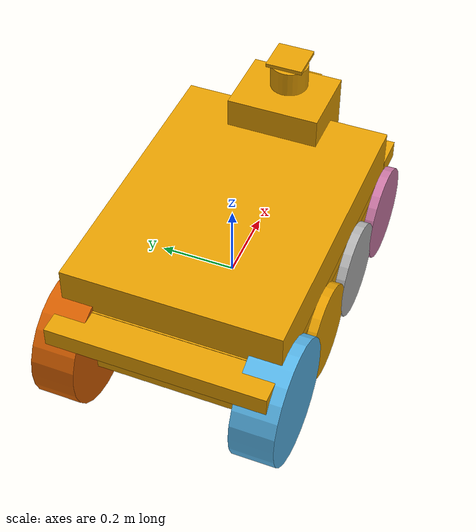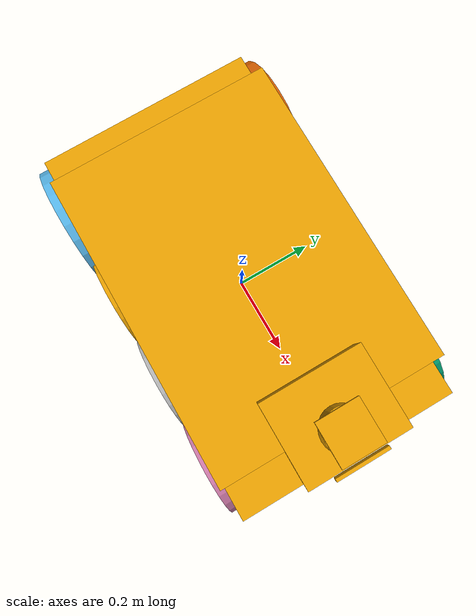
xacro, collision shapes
<?xml version='1.0' encoding='utf-8'?>
<robot name='marble_hd2_sensor_config_3' xmlns:xacro='http://ros.org/wiki/xacro'>
  <xacro:arg name="name" default="marble_hd2_sensor_config_3"/>
  <xacro:property name="robot_namespace" value="$(arg name)"/>
  <link name='${robot_namespace}/base_link'>
    <inertial>
      <origin xyz='-0.000649 -0.084945 0.062329' rpy='0 -0 0'/>
      <mass value='21.8194'/>
      <inertia ixx='0.615397' ixy='-0.0240585' ixz='-0.120749' iyy='1.75388' iyz='-0.0028322' izz='2.03641'/>
    </inertial>
    <collision name='base_link_collision'>
      <origin xyz='0 0 0.12' rpy='0 -0 0'/>
      <geometry>
        <box size='0.9874 0.5709 0.05'/>
      </geometry>
    </collision>
    <collision name='base_link_collision_bottom'>
      <origin xyz='0 0 0.046' rpy='0 -0 0'/>
      <geometry>
        <box size='0.8 0.5709 0.2'/>
      </geometry>
    </collision>
    <collision name='base_link_collision_1'>
      <origin xyz='0 0 0.185625' rpy='0 -0 0'/>
      <geometry>
        <box size='0.78992 0.5709 0.12375'/>
      </geometry>
    </collision>
    <collision name='base_link_fixed_joint_lump__camera/camera_link_collision_1'>
      <origin xyz='0 0 0.05' rpy='0 -0 0'/>
      <geometry>
        <box size='0.0078 0.13 0.0192'/>
      </geometry>
    </collision>
    <collision name='base_link_fixed_joint_lump__camera/camera_link_collision_2'>
      <origin xyz='0.485 0 0.31' rpy='0 -0 0'/>
      <geometry>
        <box size='0.0078 0.13 0.0192'/>
      </geometry>
    </collision>
    <collision name='base_link_fixed_joint_lump__camera/camera_link_collision_3'>
      <origin xyz='0.473 0 0.26' rpy='0 0.5236 0'/>
      <geometry>
        <box size='0.0078 0.13 0.0192'/>
      </geometry>
    </collision>
    <collision name='base_link_fixed_joint_lump__velodyne_base_link_collision_6'>
      <origin xyz='0.403 0 0.36' rpy='0 -0 0'/>
      <geometry>
        <cylinder radius='0.0516' length='0.0717'/>
      </geometry>
    </collision>
    <collision name='base_link_fixed_joint_lump__velodyne_gimbal_plate_base_link_collision_7'>
      <origin xyz='0.403 0 0.41' rpy='0 -0 0'/>
      <geometry>
        <box size='0.1 0.1 0.01'/>
      </geometry>
    </collision>
    <collision name='base_link_fixed_joint_lump__sensor_tower_8'>
      <origin xyz='0.374 0 0.215' rpy='0 -0 0'/>
      <geometry>
        <box size='0.2 0.25 0.225'/>
      </geometry>
    </collision>
    <collision name='base_link_fixed_joint_lump__computer_block_9'>
      <origin xyz='0.05 0 0.155' rpy='0 -0 0'/>
      <geometry>
        <box size='0.3 0.355 0.16'/>
      </geometry>
    </collision>
    <visual name='Body_visual'>
      <origin xyz='0 0 -0.135' rpy='0 -0 1.57'/>
      <geometry>
        <mesh filename='package://marble_hd2_sensor_config_3/meshes/hd2.dae' scale='1 1 1'/>
      </geometry>
    </visual>
  </link>
  <sensor name='camera_down' update_rate='30'>
    <parent link='${robot_namespace}/base_link'/>
    <origin xyz='0.473 0 0.26' rpy='0 0.5236 0'/>
    <camera>
      <image width='320' height='240' format='R8G8B8' hfov='1.5184' near='0.01' far='300' />
    </camera>
  </sensor>
  <sensor name='planar_laser' update_rate='10'>
    <parent link='${robot_namespace}/base_link'/>
    <origin xyz='0.403 0 0.127' rpy='0 -0 0'/>
  </sensor>
  <sensor name='imu_sensor' update_rate='50'>
    <parent link='${robot_namespace}/base_link'/>
    <origin xyz='0 0 0' rpy='0 -0 0'/>
  </sensor>
  <link name='${robot_namespace}/sensor_head_link'>
    <inertial>
      <origin xyz='0 0 0' rpy='0 -0 0'/>
      <mass value='0.1'/>
      <inertia ixx='0.01' ixy='0' ixz='0' iyy='0.01' iyz='0' izz='0.01'/>
    </inertial>
    <visual name='sensor_head_visual'>
      <origin xyz='0 0 0' rpy='0 -0 0'/>
      <geometry>
        <box size='0.1 0.1 0.1'/>
      </geometry>
    </visual>
    <visual name='base_link_fixed_joint_lump__velodyne_base_link_visual_10'>
      <origin xyz='0 0 0.086' rpy='0 -0 0'/>
      <geometry>
        <mesh filename='package://marble_hd2_sensor_config_3/meshes/VLP16_base_1.dae' scale='1 1 1'/>
      </geometry>
    </visual>
    <visual name='base_link_fixed_joint_lump__velodyne_base_link_visual_11'>
      <origin xyz='0 0 0.086' rpy='0 -0 0'/>
      <geometry>
        <mesh filename='package://marble_hd2_sensor_config_3/meshes/VLP16_base_2.dae' scale='1 1 1'/>
      </geometry>
    </visual>
    <visual name='base_link_fixed_joint_lump__velodyne_visual_12'>
      <origin xyz='0 0 0.086' rpy='0 -0 0'/>
      <geometry>
        <mesh filename='package://marble_hd2_sensor_config_3/meshes/VLP16_scan.dae' scale='1 1 1'/>
      </geometry>
    </visual>
    <visual name='base_link_fixed_joint_lump__velodyne_base_link_visual_13'>
      <origin xyz='-0.158 0 -0.086' rpy='3.14159 1.57079 3.14159'/>
      <geometry>
        <mesh filename='package://marble_hd2_sensor_config_3/meshes/VLP16_base_1.dae' scale='1 1 1'/>
      </geometry>
    </visual>
    <visual name='base_link_fixed_joint_lump__velodyne_base_link_visual_14'>
      <origin xyz='-0.158 0 -0.086' rpy='3.14159 1.57079 3.14159'/>
      <geometry>
        <mesh filename='package://marble_hd2_sensor_config_3/meshes/VLP16_base_2.dae' scale='1 1 1'/>
      </geometry>
    </visual>
    <visual name='base_link_fixed_joint_lump__velodyne_visual_15'>
      <origin xyz='-0.158 0 -0.086' rpy='3.14159 1.57079 3.14159'/>
      <geometry>
        <mesh filename='package://marble_hd2_sensor_config_3/meshes/VLP16_scan.dae' scale='1 1 1'/>
      </geometry>
    </visual>
    <visual name='camera_front_visual'>
      <origin xyz='0.1 0 0.013' rpy='0 -0 0'/>
      <geometry>
        <box size='0.02 0.02 0.02'/>
      </geometry>
    </visual>
    <visual name='camera_rear_visual'>
      <origin xyz='-0.1 0 0.013' rpy='0 -0 0'/>
      <geometry>
        <box size='0.02 0.02 0.02'/>
      </geometry>
    </visual>
  </link>
  <sensor name='horiz_laser' update_rate='20'>
    <parent link='${robot_namespace}/sensor_head_link'/>
    <origin xyz='0 0 0.086' rpy='0 -0 0'/>
  </sensor>
  <sensor name='vert_laser' update_rate='20'>
    <parent link='${robot_namespace}/sensor_head_link'/>
    <origin xyz='-0.158 0 -0.086' rpy='3.14159 1.57079 3.14159'/>
  </sensor>
  <sensor name='camera_front' update_rate='15'>
    <parent link='${robot_namespace}/sensor_head_link'/>
    <origin xyz='0.12 0 0.013' rpy='0 -0 0'/>
    <camera>
      <image width='1280' height='960' format='R8G8B8' hfov='1.0472' near='0.01' far='300' />
    </camera>
  </sensor>
  <sensor name='camera_rear' update_rate='15'>
    <parent link='${robot_namespace}/sensor_head_link'/>
    <origin xyz='-0.12 0 0.013' rpy='0 -0 3.14159'/>
    <camera>
      <image width='1280' height='960' format='R8G8B8' hfov='1.0472' near='0.01' far='300' />
    </camera>
  </sensor>
  <link name='${robot_namespace}/front_left_wheel_link'>
    <inertial>
      <origin xyz='0 0 0' rpy='0 -0 0'/>
      <mass value='1.5'/>
      <inertia ixx='0.02467' ixy='0' ixz='0' iyy='0.04411' iyz='0' izz='0.02467'/>
    </inertial>
    <collision name='front_left_wheel_link_collision'>
      <origin xyz='0 0 0' rpy='1.5708 -0 0'/>
      <geometry>
        <cylinder radius='0.129' length='0.1'/>
      </geometry>
    </collision>
  </link>
  <link name='${robot_namespace}/front_middle_left_wheel_link'>
    <inertial>
      <origin xyz='0 0 0' rpy='0 -0 0'/>
      <mass value='1.5'/>
      <inertia ixx='0.02467' ixy='0' ixz='0' iyy='0.04411' iyz='0' izz='0.02467'/>
    </inertial>
    <collision name='front_middle_left_wheel_link_collision'>
      <origin xyz='0 0 0' rpy='1.5708 -0 0'/>
      <geometry>
        <cylinder radius='0.129' length='0.1'/>
      </geometry>
    </collision>
  </link>
  <link name='${robot_namespace}/rear_middle_left_wheel_link'>
    <inertial>
      <origin xyz='0 0 0' rpy='0 -0 0'/>
      <mass value='1.5'/>
      <inertia ixx='0.02467' ixy='0' ixz='0' iyy='0.04411' iyz='0' izz='0.02467'/>
    </inertial>
    <collision name='rear_middle_left_wheel_link_collision'>
      <origin xyz='0 0 0' rpy='1.5708 -0 0'/>
      <geometry>
        <cylinder radius='0.129' length='0.1'/>
      </geometry>
    </collision>
  </link>
  <link name='${robot_namespace}/rear_left_wheel_link'>
    <inertial>
      <origin xyz='0 0 0' rpy='0 -0 0'/>
      <mass value='1.5'/>
      <inertia ixx='0.02467' ixy='0' ixz='0' iyy='0.04411' iyz='0' izz='0.02467'/>
    </inertial>
    <collision name='rear_left_wheel_link_collision'>
      <origin xyz='0 0 0' rpy='1.5708 -0 0'/>
      <geometry>
        <cylinder radius='0.1651' length='0.1143'/>
      </geometry>
    </collision>
  </link>
  <link name='${robot_namespace}/front_right_wheel_link'>
    <inertial>
      <origin xyz='0 0 0' rpy='0 -0 0'/>
      <mass value='1.5'/>
      <inertia ixx='0.02467' ixy='0' ixz='0' iyy='0.04411' iyz='0' izz='0.02467'/>
    </inertial>
    <collision name='front_right_wheel_link_collision'>
      <origin xyz='0 0 0' rpy='1.5708 -0 0'/>
      <geometry>
        <cylinder radius='0.129' length='0.1'/>
      </geometry>
    </collision>
  </link>
  <link name='${robot_namespace}/front_middle_right_wheel_link'>
    <inertial>
      <origin xyz='0 0 0' rpy='0 -0 0'/>
      <mass value='1.5'/>
      <inertia ixx='0.02467' ixy='0' ixz='0' iyy='0.04411' iyz='0' izz='0.02467'/>
    </inertial>
    <collision name='front_middle_right_wheel_link_collision'>
      <origin xyz='0 0 0' rpy='1.5708 -0 0'/>
      <geometry>
        <cylinder radius='0.129' length='0.1'/>
      </geometry>
    </collision>
  </link>
  <link name='${robot_namespace}/rear_middle_right_wheel_link'>
    <inertial>
      <origin xyz='0 0 0' rpy='0 -0 0'/>
      <mass value='1.5'/>
      <inertia ixx='0.02467' ixy='0' ixz='0' iyy='0.04411' iyz='0' izz='0.02467'/>
    </inertial>
    <collision name='rear_middle_right_wheel_link_collision'>
      <origin xyz='0 0 0' rpy='1.5708 -0 0'/>
      <geometry>
        <cylinder radius='0.129' length='0.1'/>
      </geometry>
    </collision>
  </link>
  <link name='${robot_namespace}/rear_right_wheel_link'>
    <inertial>
      <origin xyz='0 0 0' rpy='0 -0 0'/>
      <mass value='1.5'/>
      <inertia ixx='0.02467' ixy='0' ixz='0' iyy='0.04411' iyz='0' izz='0.02467'/>
    </inertial>
    <collision name='rear_right_wheel_link_collision'>
      <origin xyz='0 0 0' rpy='1.5708 -0 0'/>
      <geometry>
        <cylinder radius='0.1651' length='0.1143'/>
      </geometry>
    </collision>
  </link>
  <joint name='sensor_head_joint' type='fixed'>
    <origin xyz='0.4379 0 0.52418' rpy='0 -0 0'/>
    <parent link='${robot_namespace}/base_link'/>
    <child link='${robot_namespace}/sensor_head_link'/>
    <axis xyz='0 0 1'/>
    <limit lower='-1e+16' upper='1e+16' effort='-1' velocity='-1'/>
  </joint>
  <joint name='front_left_wheel_joint' type='revolute'>
    <origin xyz='0.36 0.26 0' rpy='0 -0 0'/>
    <parent link='${robot_namespace}/base_link'/>
    <child link='${robot_namespace}/front_left_wheel_link'/>
    <dynamics damping='0' friction='0' />
    <axis xyz='0 1 0'/>
    <limit lower='-1e+16' upper='1e+16' effort='-1' velocity='-1'/>
  </joint>
  <joint name='front_middle_left_wheel_joint' type='revolute'>
    <origin xyz='0.12 0.26 0' rpy='0 -0 0'/>
    <parent link='${robot_namespace}/base_link'/>
    <child link='${robot_namespace}/front_middle_left_wheel_link'/>
    <dynamics damping='0' friction='0' />
    <axis xyz='0 1 0'/>
    <limit lower='-1e+16' upper='1e+16' effort='-1' velocity='-1'/>
  </joint>
  <joint name='rear_middle_left_wheel_joint' type='revolute'>
    <origin xyz='-0.12 0.26 0' rpy='0 -0 0'/>
    <parent link='${robot_namespace}/base_link'/>
    <child link='${robot_namespace}/rear_middle_left_wheel_link'/>
    <dynamics damping='0' friction='0' />
    <axis xyz='0 1 0'/>
    <limit lower='-1e+16' upper='1e+16' effort='-1' velocity='-1'/>
  </joint>
  <joint name='rear_left_wheel_joint' type='revolute'>
    <origin xyz='-0.36 0.26 0' rpy='0 -0 0'/>
    <parent link='${robot_namespace}/base_link'/>
    <child link='${robot_namespace}/rear_left_wheel_link'/>
    <dynamics damping='0' friction='0' />
    <axis xyz='0 1 0'/>
    <limit lower='-1e+16' upper='1e+16' effort='-1' velocity='-1'/>
  </joint>
  <joint name='front_right_wheel_joint' type='revolute'>
    <origin xyz='0.36 -0.26 0' rpy='0 -0 0'/>
    <parent link='${robot_namespace}/base_link'/>
    <child link='${robot_namespace}/front_right_wheel_link'/>
    <dynamics damping='0' friction='0' />
    <axis xyz='0 1 0'/>
    <limit lower='-1e+16' upper='1e+16' effort='-1' velocity='-1'/>
  </joint>
  <joint name='front_middle_right_wheel_joint' type='revolute'>
    <origin xyz='0.12 -0.26 0' rpy='0 -0 0'/>
    <parent link='${robot_namespace}/base_link'/>
    <child link='${robot_namespace}/front_middle_right_wheel_link'/>
    <dynamics damping='0' friction='0' />
    <axis xyz='0 1 0'/>
    <limit lower='-1e+16' upper='1e+16' effort='-1' velocity='-1'/>
  </joint>
  <joint name='rear_middle_right_wheel_joint' type='revolute'>
    <origin xyz='-0.12 -0.26 0' rpy='0 -0 0'/>
    <parent link='${robot_namespace}/base_link'/>
    <child link='${robot_namespace}/rear_middle_right_wheel_link'/>
    <dynamics damping='0' friction='0' />
    <axis xyz='0 1 0'/>
    <limit lower='-1e+16' upper='1e+16' effort='-1' velocity='-1'/>
  </joint>
  <joint name='rear_right_wheel_joint' type='revolute'>
    <origin xyz='-0.36 -0.26 0' rpy='0 -0 0'/>
    <parent link='${robot_namespace}/base_link'/>
    <child link='${robot_namespace}/rear_right_wheel_link'/>
    <dynamics damping='0' friction='0' />
    <axis xyz='0 1 0'/>
    <limit lower='-1e+16' upper='1e+16' effort='-1' velocity='-1'/>
  </joint>
</robot>
